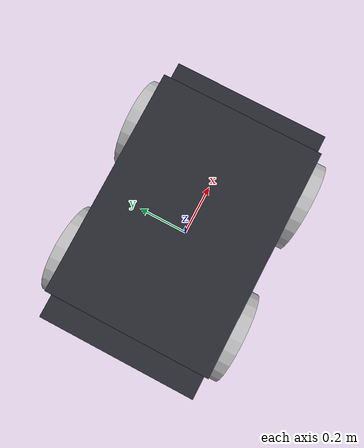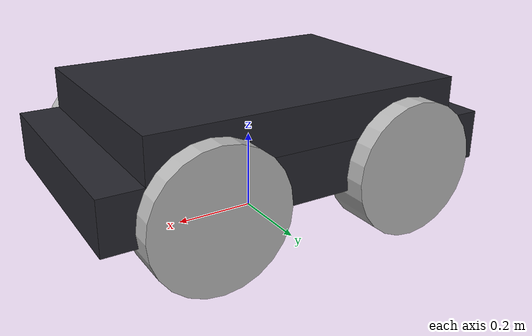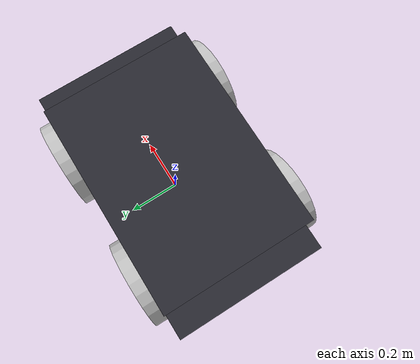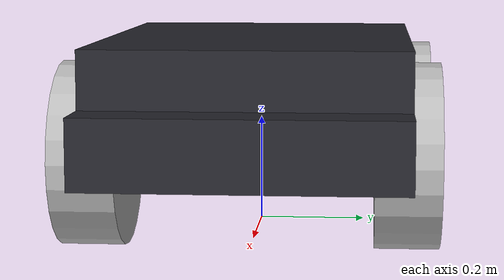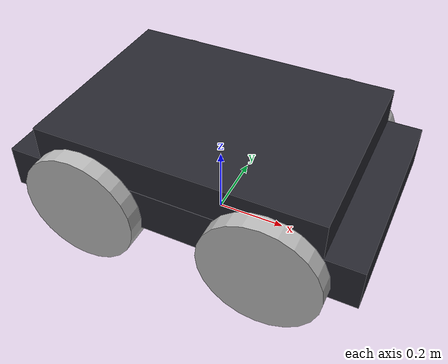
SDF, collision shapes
<?xml version="1.0" ?>
<sdf version="1.9">
  <model name="apark_husky">

    <link name="base_link">
      <pose>0 0 0.13228 0 0 0</pose>
      <inertial>
        <mass>46.034</mass>
        <pose>-0.00065 -0.085 0.062 0 0 0</pose>
        <inertia>
          <ixx>0.6022</ixx><ixy>0</ixy><ixz>0</ixz>
          <iyy>1.7386</iyy><iyz>0</iyz>
          <izz>2.0296</izz>
        </inertia>
      </inertial>
      <collision name="collision_lower">
        <pose>0 0 0.061875 0 0 0</pose>
        <geometry><box><size>0.9874 0.5709 0.123750</size></box></geometry>
      </collision>
      <collision name="collision_upper">
        <pose>0 0 0.175625 0 0 0</pose>
        <geometry><box><size>0.78992 0.5709 0.103750</size></box></geometry>
      </collision>
      <visual name="base_link_visual">
        <geometry>
          <mesh><uri>file:///opt/ros/humble/share/clearpath_platform_description/meshes/a200/base_link.dae</uri></mesh>
        </geometry>
      </visual>
      <visual name="top_chassis_visual">
        <geometry>
          <mesh><uri>file:///opt/ros/humble/share/clearpath_platform_description/meshes/a200/top_chassis.dae</uri></mesh>
        </geometry>
      </visual>
      <visual name="mocap_shell">
        <pose>0 0 0.26 0 0 0</pose>
        <geometry><box><size>0.20 0.20 0.06</size></box></geometry>
        <material>
          <ambient>0.10 0.10 0.12 1</ambient>
          <diffuse>0.15 0.15 0.18 1</diffuse>
        </material>
      </visual>
      <sensor name="imu_sensor" type="imu">
        <always_on>1</always_on>
        <update_rate>100</update_rate>
      </sensor>
    </link>

    <link name="wheel_front_left">
      <pose>0.256 0.2775 0.1651 0 0 0</pose>
      <inertial>
        <mass>2.637</mass>
        <inertia><ixx>0.02467</ixx><ixy>0</ixy><ixz>0</ixz><iyy>0.04411</iyy><iyz>0</iyz><izz>0.02467</izz></inertia>
      </inertial>
      <collision name="collision">
        <pose>0 0 0 1.5707963 0 0</pose>
        <geometry><cylinder><radius>0.1651</radius><length>0.1143</length></cylinder></geometry>
        <surface><friction><ode><mu>1.0</mu><mu2>0.3</mu2></ode></friction></surface>
      </collision>
      <visual name="visual">
        <geometry>
          <mesh><uri>file:///opt/ros/humble/share/clearpath_platform_description/meshes/a200/wheel.dae</uri></mesh>
        </geometry>
      </visual>
    </link>

    <link name="wheel_front_right">
      <pose>0.256 -0.2775 0.1651 0 0 0</pose>
      <inertial>
        <mass>2.637</mass>
        <inertia><ixx>0.02467</ixx><ixy>0</ixy><ixz>0</ixz><iyy>0.04411</iyy><iyz>0</iyz><izz>0.02467</izz></inertia>
      </inertial>
      <collision name="collision">
        <pose>0 0 0 1.5707963 0 0</pose>
        <geometry><cylinder><radius>0.1651</radius><length>0.1143</length></cylinder></geometry>
        <surface><friction><ode><mu>1.0</mu><mu2>0.3</mu2></ode></friction></surface>
      </collision>
      <visual name="visual">
        <geometry>
          <mesh><uri>file:///opt/ros/humble/share/clearpath_platform_description/meshes/a200/wheel.dae</uri></mesh>
        </geometry>
      </visual>
    </link>

    <link name="wheel_rear_left">
      <pose>-0.256 0.2775 0.1651 0 0 0</pose>
      <inertial>
        <mass>2.637</mass>
        <inertia><ixx>0.02467</ixx><ixy>0</ixy><ixz>0</ixz><iyy>0.04411</iyy><iyz>0</iyz><izz>0.02467</izz></inertia>
      </inertial>
      <collision name="collision">
        <pose>0 0 0 1.5707963 0 0</pose>
        <geometry><cylinder><radius>0.1651</radius><length>0.1143</length></cylinder></geometry>
        <surface><friction><ode><mu>1.0</mu><mu2>0.3</mu2></ode></friction></surface>
      </collision>
      <visual name="visual">
        <geometry>
          <mesh><uri>file:///opt/ros/humble/share/clearpath_platform_description/meshes/a200/wheel.dae</uri></mesh>
        </geometry>
      </visual>
    </link>

    <link name="wheel_rear_right">
      <pose>-0.256 -0.2775 0.1651 0 0 0</pose>
      <inertial>
        <mass>2.637</mass>
        <inertia><ixx>0.02467</ixx><ixy>0</ixy><ixz>0</ixz><iyy>0.04411</iyy><iyz>0</iyz><izz>0.02467</izz></inertia>
      </inertial>
      <collision name="collision">
        <pose>0 0 0 1.5707963 0 0</pose>
        <geometry><cylinder><radius>0.1651</radius><length>0.1143</length></cylinder></geometry>
        <surface><friction><ode><mu>1.0</mu><mu2>0.3</mu2></ode></friction></surface>
      </collision>
      <visual name="visual">
        <geometry>
          <mesh><uri>file:///opt/ros/humble/share/clearpath_platform_description/meshes/a200/wheel.dae</uri></mesh>
        </geometry>
      </visual>
    </link>

    <joint name="wheel_front_left_joint" type="revolute">
      <parent>base_link</parent><child>wheel_front_left</child>
      <axis><xyz>0 1 0</xyz><limit><lower>-1e16</lower><upper>1e16</upper></limit></axis>
    </joint>
    <joint name="wheel_front_right_joint" type="revolute">
      <parent>base_link</parent><child>wheel_front_right</child>
      <axis><xyz>0 1 0</xyz><limit><lower>-1e16</lower><upper>1e16</upper></limit></axis>
    </joint>
    <joint name="wheel_rear_left_joint" type="revolute">
      <parent>base_link</parent><child>wheel_rear_left</child>
      <axis><xyz>0 1 0</xyz><limit><lower>-1e16</lower><upper>1e16</upper></limit></axis>
    </joint>
    <joint name="wheel_rear_right_joint" type="revolute">
      <parent>base_link</parent><child>wheel_rear_right</child>
      <axis><xyz>0 1 0</xyz><limit><lower>-1e16</lower><upper>1e16</upper></limit></axis>
    </joint>

    <plugin filename="gz-sim-diff-drive-system" name="gz::sim::systems::DiffDrive">
      <left_joint>wheel_front_left_joint</left_joint>
      <left_joint>wheel_rear_left_joint</left_joint>
      <right_joint>wheel_front_right_joint</right_joint>
      <right_joint>wheel_rear_right_joint</right_joint>
      <wheel_separation>0.555</wheel_separation>
      <wheel_radius>0.1651</wheel_radius>
      <max_linear_acceleration>3.0</max_linear_acceleration>
      <odom_publish_frequency>50</odom_publish_frequency>
      <frame_id>odom</frame_id>
      <child_frame_id>base_link</child_frame_id>
    </plugin>

  </model>
</sdf>
